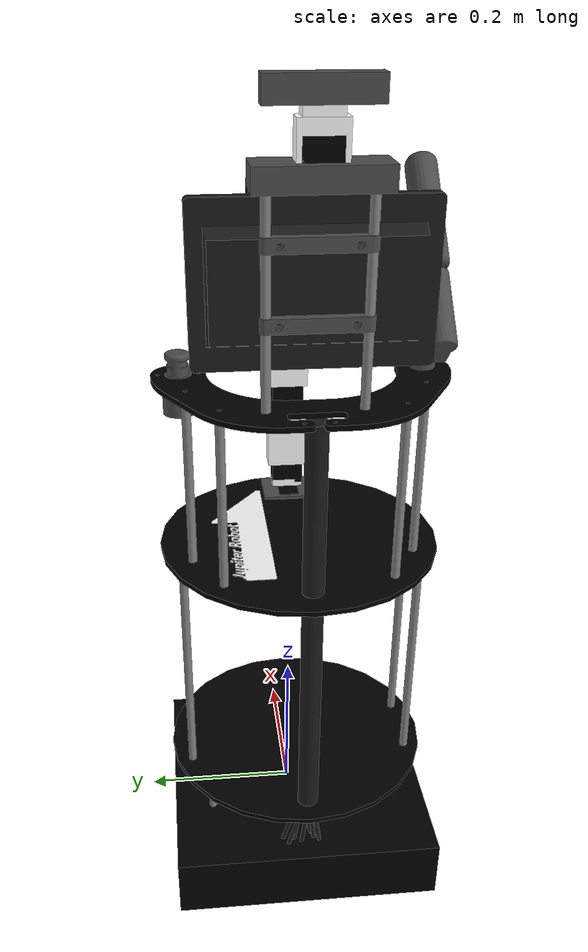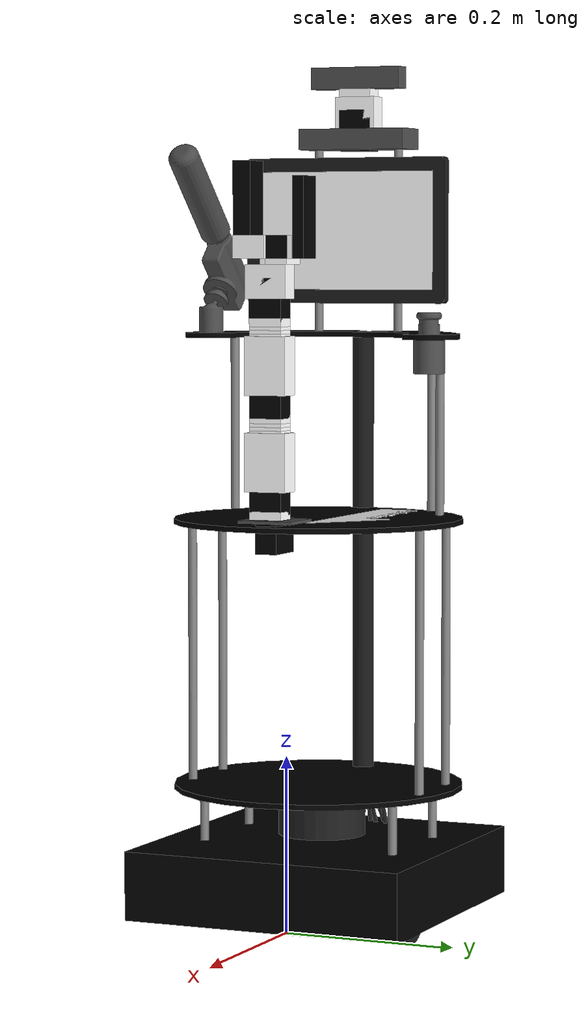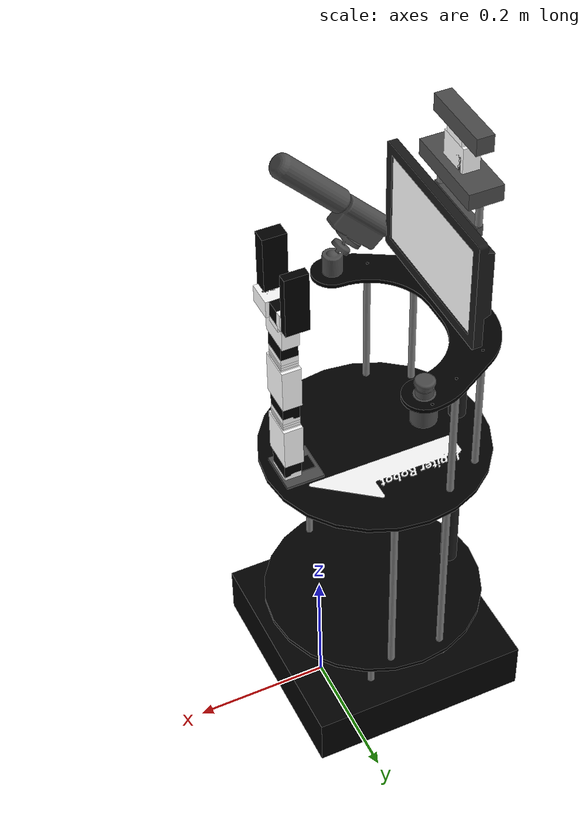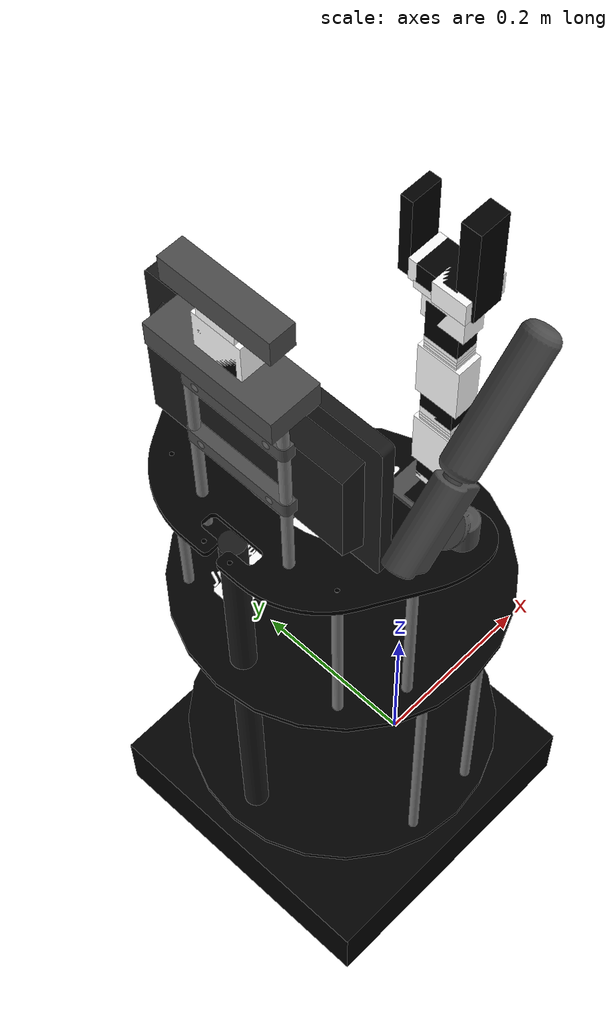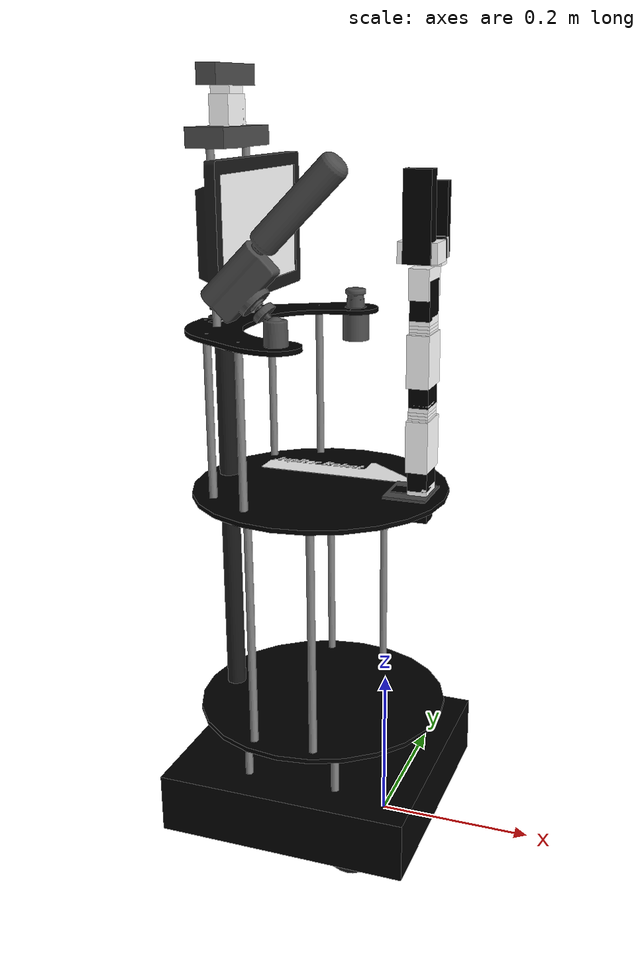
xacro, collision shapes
<?xml version="1.0" ?>
<robot name="jupiter2_pro" xmlns:xacro="http://ros.org/wiki/xacro">
  <xacro:include filename="$(find jupiterobot2_description)/urdf/common_properties.xacro"/>
  <xacro:include filename="$(find jupiterobot2_description)/urdf/jupiter2_gazebo.xacro"/>
  <xacro:include filename="$(find jupiterobot2_head_description)/urdf/jupiterobot2_head.urdf.xacro"/>
  <xacro:include filename="$(find jupiterobot2_arm_description)/urdf/jupiterobot2_arm.urdf.xacro"/>
  <xacro:property name="M_PI" value="3.14159265359"/>

  <link name="base_footprint"/>

  <joint name="base_joint" type="fixed">
    <parent link="base_footprint"/>
    <child link="base_link"/>
    <origin xyz="0 0 0.015" rpy="0 0 0"/>
  </joint>

  <link name="base_link">
    <visual>
      <origin xyz="-0.089 0 0" rpy="0 0 0"/>
      <geometry>
        <mesh filename="package://jupiterobot2_description/meshes/stacks/jupiter2_base.stl" scale="0.001 0.001 0.001"/>
      </geometry>
      <material name="Black"/>
    </visual>
    <collision>
      <origin xyz="-0.089 0 0.039" rpy="0 0 0"/>
      <geometry>
        <box size="0.33 0.33 0.078"/>
      </geometry>
    </collision>
    <inertial>
      <origin xyz="-0.089 0 0.039" rpy="0 0 0"/>
      <mass value="4.6"/>
      <inertia ixx="0.0440772" ixy="0" ixz="0"
               iyy="0.0440772" iyz="0"
               izz="0.08349" />
    </inertial>
  </link>

  <joint name="wheel_left_joint" type="continuous">
    <parent link="base_link"/>
    <child link="wheel_left_link"/>
    <origin xyz="0.0 0.144 0.018" rpy="${-M_PI/2} 0 0"/>
    <axis xyz="0 0 1"/>
  </joint>

  <link name="wheel_left_link">
    <visual>
      <origin xyz="0 0 0" rpy="${M_PI/2} 0 0"/>
      <geometry>
        <mesh filename="package://jupiterobot2_description/meshes/wheels/left_tire.stl" scale="0.001 0.001 0.001"/>
      </geometry>
      <material name="FlatBlack"/>
    </visual>
    <collision>
      <origin xyz="0 0 0" rpy="0 0 0"/>
      <geometry>
        <cylinder length="0.018" radius="0.033"/>
      </geometry>
    </collision>
    <inertial>
      <origin xyz="0 0 0" />
      <mass value="0.03" />
      <inertia ixx="9e-06" ixy="0.0" ixz="0.0"
               iyy="9e-06" iyz="0.0"
               izz="1.64e-05" />
      </inertial>
  </link>

  <joint name="wheel_right_joint" type="continuous">
    <parent link="base_link"/>
    <child link="wheel_right_link"/>
    <origin xyz="0.0 -0.144 0.018" rpy="${-M_PI/2} 0 0"/>
    <axis xyz="0 0 1"/>
  </joint>

  <link name="wheel_right_link">
    <visual>
      <origin xyz="0 0 0" rpy="${M_PI/2} 0 0"/>
      <geometry>
        <mesh filename="package://jupiterobot2_description/meshes/wheels/right_tire.stl" scale="0.001 0.001 0.001"/>
      </geometry>
      <material name="FlatBlack"/>
    </visual>
    <collision>
      <origin xyz="0 0 0" rpy="0 0 0"/>
      <geometry>
        <cylinder length="0.018" radius="0.033"/>
      </geometry>
    </collision>
    <inertial>
      <origin xyz="0 0 0" />
      <mass value="0.03" />
      <inertia ixx="9e-06" ixy="0.0" ixz="0.0"
               iyy="9e-06" iyz="0.0"
               izz="1.64e-05" />
      </inertial>
  </link>

  <joint name="caster_back_right_joint" type="fixed">
    <parent link="base_link"/>
    <child link="caster_back_right_link"/>
    <origin xyz="-0.177 -0.064 -0.0025" rpy="${-M_PI/2} 0 0"/>
  </joint>

  <link name="caster_back_right_link">
    <visual>
      <origin xyz="0 0 0" rpy="0 0 0"/>
      <geometry>
        <mesh filename="package://jupiterobot2_description/meshes/wheels/caster.stl" scale="0.001 0.001 0.001"/>
      </geometry>
      <material name="Grey"/>
    </visual>
    <collision>
      <origin xyz="0 0 0" rpy="0 0 0"/>
      <geometry>
        <sphere radius="0.0125"/>
      </geometry>
    </collision>
    <inertial>
      <origin xyz="0 0 0" />
      <mass value="0.065" />
      <inertia ixx="4.0625e-06" ixy="0.0" ixz="0.0"
               iyy="4.0625e-06" iyz="0.0"
               izz="4.0625e-06" />
    </inertial>
  </link>

  <joint name="caster_back_left_joint" type="fixed">
    <parent link="base_link"/>
    <child link="caster_back_left_link"/>
    <origin xyz="-0.177 0.064 -0.0025" rpy="${-M_PI/2} 0 0"/>
  </joint>

  <link name="caster_back_left_link">
    <visual>
      <origin xyz="0 0 0" rpy="0 0 0"/>
      <geometry>
        <mesh filename="package://jupiterobot2_description/meshes/wheels/caster.stl" scale="0.001 0.001 0.001"/>
      </geometry>
      <material name="Grey"/>
    </visual>
    <collision>
      <origin xyz="0 0 0" rpy="0 0 0"/>
      <geometry>
        <sphere radius="0.0125"/>
      </geometry>
    </collision>
    <inertial>
      <origin xyz="0 0 0" />
      <mass value="0.065" />
      <inertia ixx="4.0625e-06" ixy="0.0" ixz="0.0"
               iyy="4.0625e-06" iyz="0.0"
               izz="4.0625e-06" />
    </inertial>
  </link>

  <joint name="imu_joint" type="fixed">
    <parent link="base_link"/>
    <child link="imu_link"/>
    <origin xyz="-0.091 -0.1055 0.0535" rpy="${M_PI} 0 0"/>
  </joint>

  <link name="imu_link"/>

  <!-- base link for stacks -->
  <joint name="stack_joint" type="fixed">
    <parent link="base_link"/>
    <child link="stack_link"/>
    <origin xyz="-0.089 0 0" rpy="0 0 0"/>
  </joint>

  <link name="stack_link"/>

  <!-- pole macros -->
  <xacro:macro name="pole_40" params="parent num x y z">
    <joint name="pole_40_${num}_joint" type="fixed">
      <parent link="${parent}"/>
      <child link="pole_40_${num}_link"/>
      <origin xyz="${x} ${y} ${z}" rpy="0 0 0"/>
    </joint>
    <link name="pole_40_${num}_link">
      <visual>
        <origin xyz="0 0 0" rpy="0 0 0"/>
        <geometry>
          <mesh filename="package://jupiterobot2_description/meshes/stacks/pole_40.stl" scale="0.001 0.001 0.001"/>
        </geometry>
        <material name="Grey"/>
      </visual>
      <collision>
        <origin xyz="0 0 0" rpy="0 0 0"/>
        <geometry>
          <cylinder length="0.04" radius="0.005"/>
        </geometry>
      </collision>
      <inertial>
        <origin xyz="0 0 0" />
        <mass value="0.007" />
        <inertia ixx="9.91041667e-07" ixy="0.0" ixz="0.0"
                 iyy="9.91041667e-07" iyz="0.0"
                 izz="8.875e-08" />
      </inertial>
    </link>
  </xacro:macro>

  <xacro:macro name="pole_60" params="parent num x y z">
    <joint name="pole_60_${num}_joint" type="fixed">
      <parent link="${parent}"/>
      <child link="pole_60_${num}_link"/>
      <origin xyz="${x} ${y} ${z}" rpy="0 0 0"/>
    </joint>
    <link name="pole_60_${num}_link">
      <visual>
        <origin xyz="0 0 0" rpy="0 0 0"/>
        <geometry>
          <mesh filename="package://jupiterobot2_description/meshes/stacks/pole_60.stl" scale="0.001 0.001 0.001"/>
        </geometry>
        <material name="Grey"/>
      </visual>
      <collision>
        <origin xyz="0 0 0" rpy="0 0 0"/>
        <geometry>
          <cylinder length="0.06" radius="0.005"/>
        </geometry>
      </collision>
      <inertial>
        <origin xyz="0 0 0" />
        <mass value="0.0108" />
        <inertia ixx="3.3075e-06" ixy="0.0" ixz="0.0"
                 iyy="3.3075e-06" iyz="0.0"
                 izz="1.35e-07" />
      </inertial>
    </link>
  </xacro:macro>

  <xacro:macro name="pole_80" params="parent num x y z">
    <joint name="pole_80_${num}_joint" type="fixed">
      <parent link="${parent}"/>
      <child link="pole_80_${num}_link"/>
      <origin xyz="${x} ${y} ${z}" rpy="0 0 0"/>
    </joint>
    <link name="pole_80_${num}_link">
      <visual>
        <origin xyz="0 0 0" rpy="0 0 0"/>
        <geometry>
          <mesh filename="package://jupiterobot2_description/meshes/stacks/pole_80.stl" scale="0.001 0.001 0.001"/>
        </geometry>
        <material name="Grey"/>
      </visual>
      <collision>
        <origin xyz="0 0 0" rpy="0 0 0"/>
        <geometry>
          <cylinder length="0.08" radius="0.005"/>
        </geometry>
      </collision>
      <inertial>
        <origin xyz="0 0 0" />
        <mass value="0.0145" />
        <inertia ixx="7.82395833e-06" ixy="0.0" ixz="0.0"
                 iyy="7.82395833e-06" iyz="0.0"
                 izz="1.8125e-07" />
      </inertial>
    </link>
  </xacro:macro>

  <xacro:macro name="pole_200" params="parent num x y z">
    <joint name="pole_200_${num}_joint" type="fixed">
      <parent link="${parent}"/>
      <child link="pole_200_${num}_link"/>
      <origin xyz="${x} ${y} ${z}" rpy="0 0 0"/>
    </joint>
    <link name="pole_200_${num}_link">
      <visual>
        <origin xyz="0 0 0" rpy="0 0 0"/>
        <geometry>
          <mesh filename="package://jupiterobot2_description/meshes/stacks/pole_200.stl" scale="0.001 0.001 0.001"/>
        </geometry>
        <material name="Grey"/>
      </visual>
      <collision>
        <origin xyz="0 0 0" rpy="0 0 0"/>
        <geometry>
          <cylinder length="0.2" radius="0.005"/>
        </geometry>
      </collision>
      <inertial>
        <origin xyz="0 0 0" />
        <mass value="0.0361" />
        <inertia ixx="0.000120559" ixy="0.0" ixz="0.0"
                 iyy="0.000120559" iyz="0.0"
                 izz="4.5125e-07" />
      </inertial>
    </link>
  </xacro:macro>

  <xacro:macro name="pole_300" params="parent num x y z">
    <joint name="pole_300_${num}_joint" type="fixed">
      <parent link="${parent}"/>
      <child link="pole_300_${num}_link"/>
      <origin xyz="${x} ${y} ${z}" rpy="0 0 0"/>
    </joint>
    <link name="pole_300_${num}_link">
      <visual>
        <origin xyz="0 0 0" rpy="0 0 0"/>
        <geometry>
          <mesh filename="package://jupiterobot2_description/meshes/stacks/pole_300.stl" scale="0.001 0.001 0.001"/>
        </geometry>
        <material name="Grey"/>
      </visual>
      <collision>
        <origin xyz="0 0 0" rpy="0 0 0"/>
        <geometry>
          <cylinder length="0.3" radius="0.005"/>
        </geometry>
      </collision>
      <inertial>
        <origin xyz="0 0 0" />
        <mass value="0.0601" />
        <inertia ixx="0.000451125625" ixy="0.0" ixz="0.0"
                 iyy="0.000451125625" iyz="0.0"
                 izz="7.5125e-07" />
      </inertial>
    </link>
  </xacro:macro>

  <xacro:pole_60 parent="stack_link" num="0" x="0.06" y="0.116" z="0.108"/>
  <xacro:pole_60 parent="stack_link" num="1" x="-0.06" y="0.116" z="0.108"/>
  <xacro:pole_60 parent="stack_link" num="2" x="-0.06" y="-0.116" z="0.108"/>
  <xacro:pole_60 parent="stack_link" num="3" x="0.06" y="-0.116" z="0.108"/>

  <joint name="plate_1_joint" type="fixed">
    <parent link="stack_link"/>
    <child link="plate_1_link"/>
    <origin xyz="0 0 0.138" rpy="0 0 0"/>
  </joint>
  <link name="plate_1_link">
    <visual>
      <origin xyz="0 0 0" rpy="0 0 0"/>
      <geometry>
        <mesh filename="package://jupiterobot2_description/meshes/stacks/plate_1.stl" scale="0.001 0.001 0.001"/>
      </geometry>
      <material name="Black"/>
    </visual>
    <collision>
      <origin xyz="0 0 0.003" rpy="0 0 0"/>
      <geometry>
        <cylinder length="0.006" radius="0.165"/>
      </geometry>
    </collision>
    <inertial>
      <origin xyz="0 0 0.003" />
      <mass value="0.45" />
      <inertia ixx="0.0030641625" ixy="0.0" ixz="0.0"
               iyy="0.0030641625" iyz="0.0"
               izz="0.006125625" />
    </inertial>
  </link>

  <joint name="scan_joint" type="fixed">
    <parent link="plate_1_link"/>
    <child link="base_scan"/>
    <origin xyz="0 0 -0.04615" rpy="0 ${M_PI} 0"/>
  </joint>

  <link name="base_scan">
    <visual>
      <origin xyz="0 0 0" rpy="0 0 0"/>
      <geometry>
        <mesh filename="package://jupiterobot2_description/meshes/sensors/rplidar.dae" scale="1 1 1"/>
      </geometry>
    </visual>
    <collision>
      <origin xyz="0.01 0 -0.016" rpy="0 0 0"/>
      <geometry>
        <cylinder length="0.05" radius="0.05"/>
      </geometry>
    </collision>
    <inertial>
      <origin xyz="0.01 0 -0.016" />
      <mass value="0.188" />
      <inertia ixx="0.0001567" ixy="0.0" ixz="0.0"
               iyy="0.0001567" iyz="0.0"
               izz="0.000235" />
    </inertial>
  </link>

  <joint name="cables_joint" type="fixed">
    <parent link="plate_1_link"/>
    <child link="cables_link"/>
    <origin xyz="-0.13 0 0" rpy="${M_PI/2} 0 ${M_PI/2}"/>
  </joint>
  <link name="cables_link">
    <visual>
      <origin xyz="0 0 0" rpy="0 0 0"/>
      <geometry>
        <mesh filename="package://jupiterobot2_description/meshes/stacks/cables.stl" scale="0.001 0.001 0.001"/>
      </geometry>
      <material name="FlatBlack"/>
    </visual>
    <collision>
      <origin xyz="0 0 0" rpy="0 0 0"/>
      <geometry>
        <mesh filename="package://jupiterobot2_description/meshes/stacks/cables.stl" scale="0.001 0.001 0.001"/>
      </geometry>
    </collision>
  </link>

  <xacro:pole_300 parent="plate_1_link" num="0" x="0.04" y="0.14" z="0.156"/>
  <xacro:pole_300 parent="plate_1_link" num="1" x="-0.04" y="0.14" z="0.156"/>
  <xacro:pole_300 parent="plate_1_link" num="2" x="-0.04" y="-0.14" z="0.156"/>
  <xacro:pole_300 parent="plate_1_link" num="3" x="0.04" y="-0.14" z="0.156"/>

  <joint name="pipe_300_joint" type="fixed">
    <parent link="plate_1_link"/>
    <child link="pipe_300_link"/>
    <origin xyz="-0.13 0 0.156" rpy="0 0 0"/>
  </joint>
  <link name="pipe_300_link">
    <visual>
      <origin xyz="0 0 0" rpy="0 0 0"/>
      <geometry>
        <mesh filename="package://jupiterobot2_description/meshes/stacks/pipe_300.stl" scale="${M_SCALE} ${M_SCALE} ${M_SCALE}"/>
      </geometry>
      <material name="FlatBlack"/>
    </visual>
    <collision>
      <origin xyz="0 0 0" rpy="0 0 0"/>
      <geometry>
        <cylinder length="0.3" radius="0.0125"/>
      </geometry>
    </collision>
    <inertial>
      <origin xyz="0 0 0" />
      <mass value="0.06" />
      <inertia ixx="0.00045234375" ixy="0.0" ixz="0.0"
               iyy="0.00045234375" iyz="0.0"
               izz="4.6875e-06" />
    </inertial>
  </link>

  <joint name="plate_2_joint" type="fixed">
    <parent link="plate_1_link"/>
    <child link="plate_2_link"/>
    <origin xyz="0 0 0.306" rpy="0 0 0"/>
  </joint>
  <link name="plate_2_link">
    <visual>
      <origin xyz="0 0 0" rpy="0 0 0"/>
      <geometry>
        <mesh filename="package://jupiterobot2_description/meshes/stacks/plate_2.stl" scale="0.001 0.001 0.001"/>
      </geometry>
      <material name="Black"/>
    </visual>
    <collision>
      <origin xyz="0 0 0" rpy="0 0 0"/>
      <geometry>
        <cylinder length="0.006" radius="0.165"/>
      </geometry>
    </collision>
    <inertial>
      <origin xyz="0 0 0" />
      <mass value="0.45" />
      <inertia ixx="0.0030641625" ixy="0.0" ixz="0.0"
               iyy="0.0030641625" iyz="0.0"
               izz="0.006125625" />
    </inertial>
  </link>

  <joint name="arrow_joint" type="fixed">
    <parent link="plate_2_link"/>
    <child link="arrow_link"/>
    <origin xyz="0 0.036 0.006" rpy="0 0 0"/>
  </joint>
  <link name="arrow_link">
    <visual>
      <origin xyz="0 0 0" rpy="0 0 0"/>
      <geometry>
        <mesh filename="package://jupiterobot2_description/meshes/stacks/arrow.stl" scale="0.001 0.001 0.001"/>
      </geometry>
      <material name="White"/>
    </visual>
    <collision>
      <origin xyz="0 0 0" rpy="0 0 0"/>
      <geometry>
        <mesh filename="package://jupiterobot2_description/meshes/stacks/arrow.stl" scale="0.001 0.001 0.001"/>
      </geometry>
    </collision>
  </link>

  <!-- arm_mount -->
  <joint name="arm_mount_joint" type="fixed">
    <parent link="plate_2_link"/>
    <child link="arm_mount_link"/>
    <origin xyz="0.134 0 0.006" rpy="0 0 0"/>
  </joint>

  <link name="arm_mount_link">
    <visual>
      <origin xyz="0 0 0" rpy="0 0 0"/>
      <geometry>
        <mesh filename="package://jupiterobot2_description/meshes/stacks/arm_mount.stl" scale="0.001 0.001 0.001"/>
      </geometry>
      <material name="DarkGrey"/>
    </visual>
    <collision>
      <origin xyz="-0.013 0 0.0015" rpy="0 0 0"/>
      <geometry>
        <box size="0.056 0.064 0.003"/>
      </geometry>
    </collision>
    <inertial>
      <origin xyz="-0.013 0 0.0015" rpy="0 0 0"/>
      <mass value="0.0071"/>
      <inertia ixx="2.42879167e-06" ixy="0" ixz="0"
               iyy="1.86079167e-06" iyz="0"
               izz="4.278933e-06" />
    </inertial>
  </link>

  <xacro:pole_200 parent="plate_2_link" num="0" x="-0.05" y="0.12817" z="0.106"/>
  <xacro:pole_200 parent="plate_2_link" num="1" x="-0.10629" y="0.09567" z="0.106"/>
  <xacro:pole_200 parent="plate_2_link" num="2" x="-0.10629" y="-0.09567" z="0.106"/>
  <xacro:pole_200 parent="plate_2_link" num="3" x="-0.05" y="-0.12817" z="0.106"/>

  <joint name="pipe_200_joint" type="fixed">
    <parent link="plate_2_link"/>
    <child link="pipe_200_link"/>
    <origin xyz="-0.13 0 0.106" rpy="0 0 0"/>
  </joint>
  <link name="pipe_200_link">
    <visual>
      <origin xyz="0 0 0" rpy="0 0 0"/>
      <geometry>
        <mesh filename="package://jupiterobot2_description/meshes/stacks/pipe_200.stl" scale="${M_SCALE} ${M_SCALE} ${M_SCALE}"/>
      </geometry>
      <material name="FlatBlack"/>
    </visual>
    <collision>
      <origin xyz="0 0 0" rpy="0 0 0"/>
      <geometry>
        <cylinder length="0.2" radius="0.0125"/>
      </geometry>
    </collision>
    <inertial>
      <origin xyz="0 0 0" />
      <mass value="0.04" />
      <inertia ixx="0.000134896" ixy="0.0" ixz="0.0"
               iyy="0.000134896" iyz="0.0"
               izz="3.125e-06" />
    </inertial>
  </link>

  <joint name="plate_3_joint" type="fixed">
    <parent link="plate_2_link"/>
    <child link="plate_3_link"/>
    <origin xyz="0 0 0.206" rpy="0 0 0"/>
  </joint>
  <link name="plate_3_link">
    <visual>
      <origin xyz="0 0 0" rpy="0 0 0"/>
      <geometry>
        <mesh filename="package://jupiterobot2_description/meshes/stacks/plate_3.stl" scale="0.001 0.001 0.001"/>
      </geometry>
      <material name="Black"/>
    </visual>
    <collision>
      <origin xyz="0 0 0" rpy="0 0 0"/>
      <geometry>
        <mesh filename="package://jupiterobot2_description/meshes/stacks/plate_3.stl" scale="0.001 0.001 0.001"/>
      </geometry>
    </collision>
    <inertial>
      <origin xyz="-0.08 0 0.003"/>
      <mass value="0.152" />
      <inertia ixx="0.000923856" ixy="0.0" ixz="0.0"
               iyy="0.0003247227" iyz="0.0"
               izz="0.001247667" />
    </inertial>
  </link>

  <joint name="mic_joint" type="fixed">
    <parent link="plate_3_link"/>
    <child link="mic_link"/>
    <origin xyz="0 -0.13466 0.006" rpy="0 0 0"/>
  </joint>
  <link name="mic_link">
    <visual>
      <origin xyz="0 0 0" rpy="0 0 0"/>
      <geometry>
        <mesh filename="package://jupiterobot2_description/meshes/stacks/microphone.stl" scale="0.001 0.001 0.001"/>
      </geometry>
      <material name="DarkGrey"/>
    </visual>
    <collision>
      <origin xyz="0 0 0" rpy="0 0 0"/>
      <geometry>
        <mesh filename="package://jupiterobot2_description/meshes/stacks/microphone.stl" scale="0.001 0.001 0.001"/>
      </geometry>
    </collision>
    <inertial>
      <origin xyz="-0.02 0 0.03"/>
      <mass value="0.21" />
      <inertia ixx="7.875e-05" ixy="0.0" ixz="0.0"
               iyy="9.1e-05" iyz="0.0"
               izz="4.375e-05" />
    </inertial>
  </link>

  <joint name="estop_joint" type="fixed">
    <parent link="plate_3_link"/>
    <child link="estop_link"/>
    <origin xyz="0 0.13466 -0.0381" rpy="0 0 0"/>
  </joint>
  <link name="estop_link">
    <visual>
      <origin xyz="0 0 0" rpy="0 0 0"/>
      <geometry>
        <mesh filename="package://jupiterobot2_description/meshes/stacks/e_stop.stl" scale="0.001 0.001 0.001"/>
      </geometry>
      <material name="DarkGrey"/>
    </visual>
    <collision>
      <origin xyz="0 0 0" rpy="0 0 0"/>
      <geometry>
        <mesh filename="package://jupiterobot2_description/meshes/stacks/e_stop.stl" scale="0.001 0.001 0.001"/>
      </geometry>
    </collision>
    <inertial>
      <origin xyz="0 0 0.038" />
      <mass value="0.0763" />
      <inertia ixx="3.60151896e-05" ixy="0.0" ixz="0.0"
               iyy="3.60151896e-05" iyz="0.0"
               izz="1.23606e-05" />
    </inertial>
  </link>

  <xacro:pole_80 parent="plate_3_link" num="0" x="-0.115" y="0.05" z="0.046"/>
  <xacro:pole_80 parent="plate_3_link" num="1" x="-0.115" y="-0.05" z="0.046"/>

  <joint name="monitor_frame_1_joint" type="fixed">
    <parent link="plate_3_link"/>
    <child link="monitor_frame_1_link"/>
    <origin xyz="-0.115 0 0.0935" rpy="0 0 0"/>
  </joint>
  <link name="monitor_frame_1_link">
    <visual>
      <origin xyz="0 0 0" rpy="0 0 0"/>
      <geometry>
        <mesh filename="package://jupiterobot2_description/meshes/stacks/monitor_frame.stl" scale="0.001 0.001 0.001"/>
      </geometry>
      <material name="DarkGrey"/>
    </visual>
    <collision>
      <origin xyz="0 0 0" rpy="0 0 0"/>
      <geometry>
        <mesh filename="package://jupiterobot2_description/meshes/stacks/monitor_frame.stl" scale="0.001 0.001 0.001"/>
      </geometry>
    </collision>
    <inertial>
      <origin xyz="0 0 0" />
      <mass value="0.0136" />
      <inertia ixx="1.4471533e-05" ixy="0.0" ixz="0.0"
               iyy="4.182e-07" iyz="0.0"
               izz="1.4379733e-05" />
    </inertial>
  </link>

  <xacro:pole_60 parent="pole_80_0_link" num="4" x="0" y="0" z="0.085"/>
  <xacro:pole_60 parent="pole_80_1_link" num="5" x="0" y="0" z="0.085"/>

  <joint name="monitor_frame_2_joint" type="fixed">
    <parent link="monitor_frame_1_link"/>
    <child link="monitor_frame_2_link"/>
    <origin xyz="0 0 0.075" rpy="0 0 0"/>
  </joint>
  <link name="monitor_frame_2_link">
    <visual>
      <origin xyz="0 0 0" rpy="0 0 0"/>
      <geometry>
        <mesh filename="package://jupiterobot2_description/meshes/stacks/monitor_frame.stl" scale="0.001 0.001 0.001"/>
      </geometry>
      <material name="DarkGrey"/>
    </visual>
    <collision>
      <origin xyz="0 0 0" rpy="0 0 0"/>
      <geometry>
        <mesh filename="package://jupiterobot2_description/meshes/stacks/monitor_frame.stl" scale="0.001 0.001 0.001"/>
      </geometry>
    </collision>
    <inertial>
      <origin xyz="0 0 0" />
      <mass value="0.0136" />
      <inertia ixx="1.4471533e-05" ixy="0.0" ixz="0.0"
               iyy="4.182e-07" iyz="0.0"
               izz="1.4379733e-05" />
    </inertial>
  </link>

  <xacro:pole_40 parent="pole_60_4_link" num="0" x="0" y="0" z="0.065"/>
  <xacro:pole_40 parent="pole_60_5_link" num="1" x="0" y="0" z="0.065"/>

  <!-- head_mount -->
  <joint name="head_mount_joint" type="fixed">
    <parent link="monitor_frame_2_link"/>
    <child link="head_mount_link"/>
    <origin xyz="0 0 0.0475" rpy="0 0 0"/>
  </joint>

  <link name="head_mount_link">
    <visual>
      <origin xyz="0 0 0" rpy="0 0 0"/>
      <geometry>
        <mesh filename="package://jupiterobot2_description/meshes/stacks/head_mount.stl" scale="0.001 0.001 0.001"/>
      </geometry>
      <material name="DarkGrey"/>
    </visual>
    <collision>
      <origin xyz="0 0 0.012" rpy="0 0 0"/>
      <geometry>
        <box size="0.05 0.13 0.024"/>
      </geometry>
    </collision>
    <inertial>
      <origin xyz="0 0 0.005" rpy="0 0 0"/>
      <mass value="0.0205"/>
      <inertia ixx="2.4770833e-05" ixy="0" ixz="0"
               iyy="2.9041667e-06" iyz="0"
               izz="2.7333e-05" />
    </inertial>
  </link>

  <joint name="monitor_joint" type="fixed">
    <parent link="monitor_frame_2_link"/>
    <child link="monitor_link"/>
    <origin xyz="0.0405 0 -0.046" rpy="0 0 0"/>
  </joint>
  <link name="monitor_link">
    <visual>
      <origin xyz="0 0 0" rpy="0 0 0"/>
      <geometry>
        <mesh filename="package://jupiterobot2_description/meshes/stacks/monitor.stl" scale="0.001 0.001 0.001"/>
      </geometry>
      <material name="FlatBlack"/>
    </visual>
    <collision>
      <origin xyz="0 0 0" rpy="0 0 0"/>
      <geometry>
        <mesh filename="package://jupiterobot2_description/meshes/stacks/monitor.stl" scale="0.001 0.001 0.001"/>
      </geometry>
    </collision>
    <inertial>
      <origin xyz="-0.013 0 0.005"/>
      <mass value="0.48" />
      <inertia ixx="0.00354605" ixy="0.0" ixz="0.0"
               iyy="0.0011426" iyz="0.0"
               izz="0.00245753" />
    </inertial>
  </link>

  <joint name="screen_joint" type="fixed">
    <parent link="monitor_link"/>
    <child link="screen_link"/>
    <origin xyz="-0.0025 0 0" rpy="0 0 0"/>
  </joint>
  <link name="screen_link">
    <visual>
      <origin xyz="0 0 0" rpy="0 0 0"/>
      <geometry>
        <mesh filename="package://jupiterobot2_description/meshes/stacks/screen.stl" scale="0.001 0.001 0.001"/>
      </geometry>
      <material name="White"/>
    </visual>
    <collision>
      <origin xyz="0 0 0" rpy="0 0 0"/>
      <geometry>
        <mesh filename="package://jupiterobot2_description/meshes/stacks/screen.stl" scale="0.001 0.001 0.001"/>
      </geometry>
    </collision>
  </link>

</robot>

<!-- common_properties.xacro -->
<robot name="xacro_properties" xmlns:xacro="http://ros.org/wiki/xacro">

  <!-- Init colour -->
  <material name="Black">
    <color rgba="0.0 0.0 0.0 1.0"/>
  </material>

  <material name="FlatBlack">
    <color rgba="0.1 0.1 0.1 1.0"/>
  </material>

  <material name="DarkGrey">
    <color rgba="0.3 0.3 0.3 1.0"/>
  </material>

  <material name="Grey">
    <color rgba="0.5 0.5 0.5 1.0"/>
  </material>

  <material name="Red">
    <color rgba="0.8 0.0 0.0 1.0"/>
  </material>

  <material name="Green">
    <color rgba="0.0 0.8 0.0 1.0"/>
  </material>

  <material name="Blue">
    <color rgba="0.0 0.0 0.8 1.0"/>
  </material>

  <material name="White">
    <color rgba="1.0 1.0 1.0 1.0"/>
  </material>

</robot>

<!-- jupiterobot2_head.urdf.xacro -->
<!-- Describe URDF for Jupiter2 Head -->
<robot name="jupiterobot2_head" xmlns:xacro="http://ros.org/wiki/xacro">

    <!-- We can configure joints velocity limit and lower/upper limits
         to allow access to different operational areas, e.g. left handed vs. right handed robot -->
    <xacro:property name="joints_vlimit" value="1.571"/>
    <xacro:property name="joint_6_llimit" value="-1.5"/>
    <xacro:property name="joint_6_ulimit" value="1.5"/>

    <!-- Included URDF Files -->
    <xacro:include filename="$(find jupiterobot2_head_description)/urdf/jupiterobot2_head.xacro"/>

    <!-- Jupiter2 head macro -->
    <xacro:jupiterobot2_head parent="head_mount_link" color="White">
        <origin xyz="0.0 0.0 0.076"/>
    </xacro:jupiterobot2_head>

</robot>

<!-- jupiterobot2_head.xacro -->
<!-- Head description for Jupiter2 Head -->
<robot xmlns:xacro="http://ros.org/wiki/xacro">
  <xacro:include filename="$(find jupiterobot2_head_description)/urdf/head_hardware.xacro"/>
  <xacro:include filename="$(find jupiterobot2_head_description)/urdf/camera_top.urdf.xacro"/>

  <xacro:macro name="jupiterobot2_head" params="parent color *origin">
    <joint name="head_base_joint" type="fixed">
      <xacro:insert_block name="origin"/>
      <parent link="${parent}"/>
      <child link="head_base_link"/>
    </joint>
    <link name="head_base_link"/>

    <xacro:dynamixel_AX12_fixed parent="head_base_link" name="head_servo">
      <origin xyz="0 0 ${-AX12_HEIGHT-0.004+0.001}" rpy="0 0 0"/>
    </xacro:dynamixel_AX12_fixed>
    <xacro:bioloid_F2_revolute parent="head_servo_link" name="head" color="${color}"
                vlimit="${joints_vlimit}" llimit="${joint_6_llimit}" ulimit="${joint_6_ulimit}">
      <origin xyz="0 0 0" rpy="0 0 0"/>
    </xacro:bioloid_F2_revolute>
    <xacro:bioloid_F3_fixed parent="head_link" name="head_plate" color="${color}">
      <origin xyz="0 0 ${F2_HEIGHT}" rpy="0 ${M_PI} 0"/>
    </xacro:bioloid_F3_fixed>

    <!-- camera_top -->
    <xacro:sensor_camera_top parent="head_plate_link"/>

    <!-- Load -->
    <xacro:include filename="$(find jupiterobot2_head_description)/urdf/jupiterobot2_head_gazebo.xacro"/>

  </xacro:macro>
</robot>

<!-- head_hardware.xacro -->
<!-- Basic URDF components for Jupiter2 Head-->
<robot xmlns:xacro="http://ros.org/wiki/xacro">
  <xacro:property name="M_PI" value="3.14159265359"/>
  <xacro:property name="M_SCALE" value="0.001"/>
  <xacro:property name="AX12_HEIGHT" value="0.0385"/>
  <xacro:property name="AX12_WIDTH" value="0.038"/>
  <xacro:property name="AX12_LENGTH" value="0.050"/>
  <xacro:property name="F2_HEIGHT" value="0.0265"/>
  <xacro:property name="F3_HEIGHT" value="0.009"/>

  <xacro:macro name="dynamixel_AX12_fixed" params="parent name *origin">
    <joint name="${name}_joint" type="fixed">
      <xacro:insert_block name="origin"/>
      <parent link="${parent}"/>
      <child link="${name}_link"/>
    </joint>
    <link name="${name}_link">
      <visual>
        <origin xyz="0 0 0" rpy="0 0 0"/>
        <geometry>
          <mesh filename="package://jupiterobot2_head_description/meshes/ax12_box.stl" scale="${M_SCALE} ${M_SCALE} ${M_SCALE}"/>
        </geometry>
        <material name="Black"/>
      </visual>
      <collision>
        <origin xyz="0.0 0.0 -0.01241" rpy="0 0 0"/>
        <geometry>
          <box size="0.025 0.038 0.04762"/>
        </geometry>
      </collision>
      <inertial>
        <origin xyz="0 0 0"/>
        <mass value="0.055"/>
        <inertia ixx="0.000017012" ixy="0.0" ixz="0.0"
                 iyy="0.000013258" iyz="0.0"
                 izz="0.000009483"/>
      </inertial>
    </link>
    <gazebo reference="${name}_link">
      <material>Gazebo/Black</material>
      <selfCollide>true</selfCollide>
      <gravity>true</gravity>
    </gazebo>
  </xacro:macro>

  <xacro:macro name="bioloid_F2_revolute" params="parent name color llimit ulimit vlimit *origin">
    <joint name="${name}_joint" type="revolute">
      <xacro:insert_block name="origin"/>
      <axis xyz="0 1 0"/>
      <limit effort="30" velocity="${vlimit}" lower="${llimit}" upper="${ulimit}"/>
      <dynamics friction="0.13"/>
      <parent link="${parent}"/>
      <child link="${name}_link"/>
    </joint>

    <link name="${name}_link">
      <visual>
        <origin xyz="0 0 0" rpy="0 0 0"/>
        <geometry>
          <mesh filename="package://jupiterobot2_head_description/meshes/F2.stl" scale="${M_SCALE} ${M_SCALE} ${M_SCALE}"/>
        </geometry>
        <material name="${color}"/>
      </visual>
      <collision>
        <origin xyz="0.0 0.0 0.00775" rpy="0 0 0"/>
        <geometry>
          <box size="0.025 0.0485 0.0375"/>
        </geometry>
      </collision>
      <inertial>
        <origin xyz="0 0 0.015"/>
        <mass value="0.0115"/>
        <inertia ixx="3.55565625e-06" ixy="0.0" ixz="0.0"
                 iyy="1.946614583e-06" iyz="0.0"
                 izz="2.80695833e-06"/>
      </inertial>
    </link>

    <gazebo reference="${name}_link">
      <material>Gazebo/${color}</material>
      <selfCollide>true</selfCollide>
      <gravity>true</gravity>
    </gazebo>
  </xacro:macro>

  <xacro:macro name="bioloid_F3_fixed" params="parent name color *origin">
    <joint name="${name}_joint" type="fixed">
      <xacro:insert_block name="origin"/>
      <parent link="${parent}"/>
      <child link="${name}_link"/>
    </joint>

    <link name="${name}_link">
      <visual>
        <origin xyz="0 0 0" rpy="0 0 0"/>
        <geometry>
          <mesh filename="package://jupiterobot2_head_description/meshes/F3.stl" scale="${M_SCALE} ${M_SCALE} ${M_SCALE}"/>
        </geometry>
        <material name="${color}"/>
      </visual>
      <collision>
        <origin xyz="0.0 0.0 -0.0045" rpy="0 0 0"/>
        <geometry>
          <box size="0.025 0.038 0.009"/>
        </geometry>
      </collision>
      <inertial>
        <origin xyz="0 0 -0.004"/>
        <mass value="0.005"/>
        <inertia ixx="6.2833e-07" ixy="0.0" ixz="0.0"
                 iyy="2.870833e-07" iyz="0.0"
                 izz="8.620833e-07"/>
      </inertial>
    </link>

    <gazebo reference="${name}_link">
      <material>Gazebo/${color}</material>
      <selfCollide>true</selfCollide>
      <gravity>true</gravity>
    </gazebo>
  </xacro:macro>

</robot>

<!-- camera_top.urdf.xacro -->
<robot name="sensor_camera_top" xmlns:xacro="http://ros.org/wiki/xacro">
    <!-- Xacro properties -->
    <xacro:property name="cam_px" value="0.000"/>
    <xacro:property name="cam_py" value="-0.009"/>
    <xacro:property name="cam_pz" value="0.000"/>
    <xacro:property name="cam_depth_offset" value="0.001"/>
    <!-- camera_top properties -->
    <xacro:macro name="sensor_camera_top" params="parent">
        <joint name="camera_joint" type="fixed">
            <origin xyz="-0.0125 0 -0.0215" rpy="0 ${M_PI} 0"/>
            <parent link="${parent}"/>
            <child link="camera_link"/>
        </joint>
        <link name="camera_link">
            <visual>
                <origin xyz="0 0 0" rpy="0 0 0"/>
                <geometry>
                    <mesh filename="package://jupiterobot2_head_description/meshes/camera.stl" scale="0.001 0.001 0.001"/>
                </geometry>
                <material name="DarkGrey"/>
            </visual>
            <collision>
                <origin xyz="-0.0125 0 0" rpy="0 0 0"/>
                <geometry>
                    <box size="0.025 0.109 0.025"/>
                </geometry>
            </collision>
            <inertial>
                <origin xyz="-0.0125 0 0" rpy="0 0 0" />
                <mass value="0.06" />
                <inertia ixx="6.253e-05" ixy="0.0" ixz="0.0"
                         iyy="6.25e-06" iyz="0.0"
                         izz="6.253e-05" />
            </inertial>
        </link>
        <gazebo reference="camera_link">
            <material>Gazebo/DarkGrey</material>
            <selfCollide>true</selfCollide>
            <gravity>true</gravity>
        </gazebo>

        <joint name="camera_color_joint" type="fixed">
            <origin xyz="${cam_px} ${cam_py} ${cam_pz}" rpy="0 0 0"/>
            <parent link="camera_link"/>
            <child link="camera_color_frame"/>
        </joint>
        <link name="camera_color_frame"/>

        <joint name="camera_color_optical_joint" type="fixed">
            <origin xyz="0 0 0" rpy="${-M_PI/2} 0 ${-M_PI/2}"/>
            <parent link="camera_color_frame"/>
            <child link="camera_color_optical_frame"/>
        </joint>
        <link name="camera_color_optical_frame"/>

        <joint name="camera_depth_joint" type="fixed">
            <origin xyz="${cam_px} ${cam_py + cam_depth_offset} ${cam_pz}" rpy="0 0 0"/>
            <parent link="camera_link"/>
            <child link="camera_depth_frame"/>
        </joint>
        <link name="camera_depth_frame"/>

        <joint name="camera_depth_optical_joint" type="fixed">
            <origin xyz="0 0 0" rpy="${-M_PI/2} 0 ${-M_PI/2}"/>
            <parent link="camera_depth_frame"/>
            <child link="camera_depth_optical_frame"/>
        </joint>
        <link name="camera_depth_optical_frame"/>
    </xacro:macro>

</robot>

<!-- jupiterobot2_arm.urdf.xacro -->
<!-- Describe URDF for Jupiter2 Arm -->
<robot name="jupiterobot2_arm" xmlns:xacro="http://ros.org/wiki/xacro">

    <!-- We can configure joints velocity limit and lower/upper limits
         to allow access to different operational areas, e.g. left handed vs. right handed robot -->
    <xacro:property name="joints_vlimit" value="1.571"/>
    <xacro:property name="arm1_llimit" value="-2.617"/>
    <xacro:property name="arm1_ulimit" value="2.617"/>
    <xacro:property name="arm2_llimit" value="-2.617"/>
    <xacro:property name="arm2_ulimit" value="2.617"/>
    <xacro:property name="arm3_llimit" value="-2.617"/>
    <xacro:property name="arm3_ulimit" value="2.617"/>
    <xacro:property name="arm4_llimit" value="-1.745"/>
    <xacro:property name="arm4_ulimit" value="1.745"/>

    <!-- Included URDF Files -->
    <xacro:include filename="$(find jupiterobot2_arm_description)/urdf/jupiterobot2_arm.xacro"/>

    <!-- As we don't have here a robot base, add a base_link link as its location reference -->
    <!--link name="arm_mount_link"/-->

    <!-- Jupiter2 arm macro -->
    <xacro:jupiterobot2_arm parent="arm_mount_link" color="White" gripper_color="Black">
      <!-- Place the "floating" arm at the location it should be -->
      <origin xyz="0.0 0.0 -0.015"/>
    </xacro:jupiterobot2_arm>
</robot>

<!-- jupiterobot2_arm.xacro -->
<!-- Arm description for Jupiter2 Arm -->
<robot xmlns:xacro="http://ros.org/wiki/xacro">
  <xacro:include filename="$(find jupiterobot2_arm_description)/urdf/arm_hardware.xacro"/>

  <xacro:macro name="jupiterobot2_arm" params="parent color gripper_color *origin">
    <link name="arm_base_link"/>
    <joint name="arm_base_joint" type="fixed">
      <xacro:insert_block name="origin"/>
      <parent link="${parent}"/>
      <child link="arm_base_link"/>
    </joint>

    <!-- arm servo ID1 joint -->
    <xacro:dynamixel_AX12_fixed parent="arm_base_link" name="arm1_servo">
      <origin xyz="0 0 0" rpy="${M_PI/2} 0 ${M_PI/2}"/>
    </xacro:dynamixel_AX12_fixed>
    <xacro:bioloid_F3_revolute parent="arm1_servo_link" name="arm1" color="${color}"
                               vlimit="${joints_vlimit}" llimit="${arm1_llimit}" ulimit="${arm1_ulimit}">
      <origin xyz="0 ${AX12_WIDTH/2} 0" rpy="${-M_PI/2} ${M_PI/2} ${M_PI}"/>
    </xacro:bioloid_F3_revolute>

    <!-- arm servo ID2 joint -->
    <xacro:dynamixel_AX12_fixed parent="arm1_link" name="arm2_servo">
      <origin xyz="0 0 ${-AX12_HEIGHT-F10_HEIGHT+0.001}" rpy="0 ${M_PI} 0"/>
    </xacro:dynamixel_AX12_fixed>
    <xacro:bioloid_F4_revolute parent="arm2_servo_link" name="arm2" color="${color}"
                               vlimit="${joints_vlimit}" llimit="${arm2_llimit}" ulimit="${arm2_ulimit}">
      <origin xyz="0 0 0" rpy="0 0 0"/>
    </xacro:bioloid_F4_revolute>
    <xacro:bioloid_F10_fixed parent="arm2_link" name="arm2_F10_1" color="${color}">
      <origin xyz="0 0 ${F4_HEIGHT+F10_HEIGHT/2}" rpy="0 0 0"/>
    </xacro:bioloid_F10_fixed>
    <xacro:bioloid_F10_fixed parent="arm2_F10_1_link" name="arm2_F10_2" color="${color}">
      <origin xyz="0 0 ${F10_HEIGHT}" rpy="0 0 0"/>
    </xacro:bioloid_F10_fixed>
    <xacro:bioloid_F10_fixed parent="arm2_F10_2_link" name="arm2_F10_3" color="${color}">
      <origin xyz="0 0 ${F10_HEIGHT}" rpy="0 0 0"/>
    </xacro:bioloid_F10_fixed>
    <xacro:bioloid_F3_fixed parent="arm2_F10_3_link" name="arm2_F3" color="${color}">
      <origin xyz="0 0 ${F10_HEIGHT/2}" rpy="0 ${M_PI} 0"/>
    </xacro:bioloid_F3_fixed>

    <!-- arm servo ID3 joint -->
    <xacro:dynamixel_AX12_fixed parent="arm2_F3_link" name="arm3_servo">
      <origin xyz="0 0 ${-AX12_HEIGHT-F10_HEIGHT+0.001}" rpy="0 ${M_PI} 0"/>
    </xacro:dynamixel_AX12_fixed>
    <xacro:bioloid_F4_revolute parent="arm3_servo_link" name="arm3" color="${color}"
                               vlimit="${joints_vlimit}" llimit="${arm3_llimit}" ulimit="${arm3_ulimit}">
      <origin xyz="0 0 0" rpy="0 0 0"/>
    </xacro:bioloid_F4_revolute>
    <xacro:bioloid_F10_fixed parent="arm3_link" name="arm3_F10_1" color="${color}">
      <origin xyz="0 0 ${F4_HEIGHT+F10_HEIGHT/2}" rpy="0 0 0"/>
    </xacro:bioloid_F10_fixed>
    <xacro:bioloid_F10_fixed parent="arm3_F10_1_link" name="arm3_F10_2" color="${color}">
      <origin xyz="0 0 ${F10_HEIGHT}" rpy="0 0 0"/>
    </xacro:bioloid_F10_fixed>
    <xacro:bioloid_F10_fixed parent="arm3_F10_2_link" name="arm3_F10_3" color="${color}">
      <origin xyz="0 0 ${F10_HEIGHT}" rpy="0 0 0"/>
    </xacro:bioloid_F10_fixed>
    <xacro:bioloid_F3_fixed parent="arm3_F10_3_link" name="arm3_F3" color="${color}">
      <origin xyz="0 0 ${F10_HEIGHT/2}" rpy="0 ${M_PI} 0"/>
    </xacro:bioloid_F3_fixed>

    <!-- arm servo ID4 joint -->
    <xacro:dynamixel_AX12_fixed parent="arm3_F3_link" name="arm4_servo">
      <origin xyz="0 0 ${-AX12_HEIGHT-F10_HEIGHT+0.001}" rpy="0 ${M_PI} 0"/>
    </xacro:dynamixel_AX12_fixed>
    <xacro:bioloid_F2_revolute parent="arm4_servo_link" name="arm4" color="${color}"
                               vlimit="${joints_vlimit}" llimit="${arm4_llimit}" ulimit="${arm4_ulimit}">
      <origin xyz="0 0 0" rpy="0 0 0"/>
    </xacro:bioloid_F2_revolute>

    <!-- fake gripper_link joint gives us a free servo!
         this makes us 5DOF and saves you $44.90
         that's a lot of coin! -->
    <link name="gripper_link"/>
    <joint name="gripper_link_joint" type="revolute">
      <origin xyz="0 0 0.112" rpy="0 -1.57 0"/>
      <parent link="arm4_link"/>
      <child link="gripper_link"/>
      <limit effort="30" velocity="1" lower="-3.14" upper="3.14"/>
      <axis xyz="1 0 0"/>
    </joint>

    <!-- gripper - Load Jupiter2 gripper -->
    <xacro:include filename="$(find jupiterobot2_arm_description)/urdf/jupiterobot2_gripper.xacro"/>

    <!-- Load -->
    <xacro:include filename="$(find jupiterobot2_arm_description)/urdf/jupiterobot2_arm_gazebo.xacro"/>

  </xacro:macro>

</robot>

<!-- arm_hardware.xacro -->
<!-- Basic URDF components for Jupiter2 Arm -->
<robot xmlns:xacro="http://ros.org/wiki/xacro">
  <xacro:property name="M_PI" value="3.14159265359"/>
  <xacro:property name="M_SCALE" value="0.001"/>
  <xacro:property name="F10_HEIGHT" value="0.004"/>
  <xacro:property name="F4_HEIGHT" value="0.0525"/>
  <xacro:property name="F3_HEIGHT" value="0.009"/>
  <xacro:property name="F2_HEIGHT" value="0.0265"/>
  <xacro:property name="AX12_HEIGHT" value="0.0385"/>
  <xacro:property name="AX12_WIDTH" value="0.038"/>
  <xacro:property name="AX12_LENGTH" value="0.050"/>

  <xacro:macro name="finger_active" params="parent name color *origin">
    <joint name="${name}_joint" type="fixed">
      <xacro:insert_block name="origin"/>
      <parent link="${parent}"/>
      <child link="${name}_link"/>
    </joint>

    <link name="${name}_link">
      <visual>
        <origin xyz="0 0 0" rpy="0 0 0"/>
        <geometry>
          <mesh filename="package://jupiterobot2_arm_description/meshes/finger_active.stl" scale="${M_SCALE} ${M_SCALE} ${M_SCALE}"/>
        </geometry>
        <material name="${color}"/>
      </visual>
      <collision>
        <origin xyz="0.0535 0.017 0.0105" rpy="0 0 0"/>
        <geometry>
          <box size="0.107 0.034 0.021"/>
        </geometry>
      </collision>
      <inertial>
        <origin xyz="0.0535 0.017 0.0105" rpy="0 0 0"/>
        <mass value="0.009"/>
        <inertia ixx="1.19775e-06" ixy="0" ixz="0"
                 iyy="8.9175e-06" iyz="0"
                 izz="9.45375e-06" />
      </inertial>
    </link>

    <gazebo reference="${name}_link">
      <material>Gazebo/${color}</material>
      <selfCollide>true</selfCollide>
      <gravity>true</gravity>
    </gazebo>
  </xacro:macro>

  <xacro:macro name="finger_fixed" params="parent name color *origin">
    <joint name="${name}_joint" type="fixed">
      <xacro:insert_block name="origin"/>
      <parent link="${parent}"/>
      <child link="${name}_link"/>
    </joint>

    <link name="${name}_link">
      <visual>
        <origin xyz="0 0 0" rpy="0 0 0"/>
        <geometry>
          <mesh filename="package://jupiterobot2_arm_description/meshes/finger_static.stl" scale="${M_SCALE} ${M_SCALE} ${M_SCALE}"/>
        </geometry>
        <material name="${color}"/>
      </visual>
      <collision>
        <origin xyz="0.045 0.017 0.0065" rpy="0 0 0"/>
        <geometry>
          <box size="0.09 0.034 0.013"/>
        </geometry>
      </collision>
      <inertial>
        <origin xyz="0.045 0.017 0.0065" rpy="0 0 0"/>
        <mass value="0.0075"/>
        <inertia ixx="8.28125e-07" ixy="0" ixz="0"
                 iyy="5.168125e-06" iyz="0"
                 izz="5.785e-06" />
      </inertial>
    </link>

    <gazebo reference="${name}_link">
      <material>Gazebo/${color}</material>
      <selfCollide>true</selfCollide>
      <gravity>true</gravity>
    </gazebo>
  </xacro:macro>

  <xacro:macro name="dynamixel_AX12_fixed" params="parent name *origin">
    <joint name="${name}_joint" type="fixed">
      <xacro:insert_block name="origin"/>
      <parent link="${parent}"/>
      <child link="${name}_link"/>
    </joint>

    <link name="${name}_link">
      <visual>
        <origin xyz="0 0 0" rpy="0 0 0"/>
        <geometry>
          <mesh filename="package://jupiterobot2_arm_description/meshes/ax12_box.stl" scale="${M_SCALE} ${M_SCALE} ${M_SCALE}"/>
        </geometry>
        <material name="Black"/>
      </visual>
      <collision>
        <origin xyz="0.0 0.0 -0.01241" rpy="0 0 0"/>
        <geometry>
          <box size="0.025 0.038 0.04762"/>
        </geometry>
      </collision>
      <inertial>
        <origin xyz="0 0 0"/>
        <mass value="0.055"/>
        <inertia ixx="0.000017012" ixy="0.0" ixz="0.0"
                 iyy="0.000013258" iyz="0.0"
                 izz="0.000009483"/>
      </inertial>
    </link>

    <gazebo reference="${name}_link">
      <material>Gazebo/Black</material>
      <selfCollide>true</selfCollide>
      <gravity>true</gravity>
    </gazebo>
  </xacro:macro>

  <xacro:macro name="bioloid_F10_fixed" params="parent name color *origin">
    <joint name="${name}_joint" type="fixed">
      <xacro:insert_block name="origin"/>
      <parent link="${parent}"/>
      <child link="${name}_link"/>
    </joint>

    <link name="${name}_link">
      <visual>
        <origin xyz="0 0 0" rpy="0 0 0"/>
        <geometry>
          <mesh filename="package://jupiterobot2_arm_description/meshes/F10.stl" scale="${M_SCALE} ${M_SCALE} ${M_SCALE}"/>
        </geometry>
        <material name="${color}"/>
      </visual>
      <collision>
        <origin xyz="0.0 0.0 0.0" rpy="0 0 0"/>
        <geometry>
          <box size="0.025 0.038 0.004"/>
        </geometry>
      </collision>
      <inertial>
        <origin xyz="0 0 0"/>
        <mass value="0.0033"/>
        <inertia ixx="4.015e-07" ixy="0.0" ixz="0.0"
                 iyy="1.76275e-07" iyz="0.0"
                 izz="5.68975e-07"/>
      </inertial>
    </link>

    <gazebo reference="${name}_link">
      <material>Gazebo/${color}</material>
      <selfCollide>true</selfCollide>
      <gravity>true</gravity>
    </gazebo>
  </xacro:macro>

  <xacro:macro name="bioloid_F3_fixed" params="parent name color *origin">
    <joint name="${name}_joint" type="fixed">
      <xacro:insert_block name="origin"/>
      <parent link="${parent}"/>
      <child link="${name}_link"/>
    </joint>

    <link name="${name}_link">
      <visual>
        <origin xyz="0 0 0" rpy="0 0 0"/>
        <geometry>
          <mesh filename="package://jupiterobot2_arm_description/meshes/F3.stl" scale="${M_SCALE} ${M_SCALE} ${M_SCALE}"/>
        </geometry>
        <material name="${color}"/>
      </visual>
      <collision>
        <origin xyz="0.0 0.0 -0.0045" rpy="0 0 0"/>
        <geometry>
          <box size="0.025 0.038 0.009"/>
        </geometry>
      </collision>
      <inertial>
        <origin xyz="0 0 -0.004"/>
        <mass value="0.005"/>
        <inertia ixx="6.2833e-07" ixy="0.0" ixz="0.0"
                 iyy="2.870833e-07" iyz="0.0"
                 izz="8.620833e-07"/>
      </inertial>
    </link>

    <gazebo reference="${name}_link">
      <material>Gazebo/${color}</material>
      <selfCollide>true</selfCollide>
      <gravity>true</gravity>
    </gazebo>
  </xacro:macro>

  <xacro:macro name="bioloid_F3_revolute" params="parent name color llimit ulimit vlimit *origin">
    <joint name="${name}_joint" type="revolute">
      <xacro:insert_block name="origin"/>
      <axis xyz="0 0 -1"/>
      <limit effort="30" velocity="${vlimit}" lower="${llimit}" upper="${ulimit}"/>
      <dynamics friction="0.13"/>
      <parent link="${parent}"/>
      <child link="${name}_link"/>
    </joint>

    <link name="${name}_link">
      <visual>
        <origin xyz="0 0 0" rpy="0 0 0"/>
        <geometry>
          <mesh filename="package://jupiterobot2_arm_description/meshes/F3.stl" scale="${M_SCALE} ${M_SCALE} ${M_SCALE}"/>
        </geometry>
        <material name="${color}"/>
      </visual>
      <collision>
        <origin xyz="0.0 0.0 -0.0045" rpy="0 0 0"/>
        <geometry>
          <box size="0.025 0.038 0.009"/>
        </geometry>
      </collision>
      <inertial>
        <origin xyz="0 0 -0.004"/>
        <mass value="0.005"/>
        <inertia ixx="6.2833e-07" ixy="0.0" ixz="0.0"
                 iyy="2.870833e-07" iyz="0.0"
                 izz="8.620833e-07"/>
      </inertial>
    </link>

    <gazebo reference="${name}_link">
      <material>Gazebo/${color}</material>
      <selfCollide>true</selfCollide>
      <gravity>true</gravity>
    </gazebo>
  </xacro:macro>

  <xacro:macro name="bioloid_F2_revolute" params="parent name color llimit ulimit vlimit *origin">
    <joint name="${name}_joint" type="revolute">
      <xacro:insert_block name="origin"/>
      <axis xyz="0 1 0"/>
      <limit effort="30" velocity="${vlimit}" lower="${llimit}" upper="${ulimit}"/>
      <dynamics friction="0.13"/>
      <parent link="${parent}"/>
      <child link="${name}_link"/>
    </joint>

    <link name="${name}_link">
      <visual>
        <origin xyz="0 0 0" rpy="0 0 0"/>
        <geometry>
          <mesh filename="package://jupiterobot2_arm_description/meshes/F2.stl" scale="${M_SCALE} ${M_SCALE} ${M_SCALE}"/>
        </geometry>
        <material name="${color}"/>
      </visual>
      <collision>
        <origin xyz="0.0 0.0 0.00775" rpy="0 0 0"/>
        <geometry>
          <box size="0.025 0.0485 0.0375"/>
        </geometry>
      </collision>
      <inertial>
        <origin xyz="0 0 0.015"/>
        <mass value="0.0115"/>
        <inertia ixx="3.55565625e-06" ixy="0.0" ixz="0.0"
                 iyy="1.946614583e-06" iyz="0.0"
                 izz="2.80695833e-06"/>
      </inertial>
    </link>

    <gazebo reference="${name}_link">
      <material>Gazebo/${color}</material>
      <selfCollide>true</selfCollide>
      <gravity>true</gravity>
    </gazebo>
  </xacro:macro>

  <xacro:macro name="bioloid_F4_revolute" params="parent name color llimit ulimit vlimit *origin">
    <joint name="${name}_joint" type="revolute">
      <xacro:insert_block name="origin"/>
      <axis xyz="0 1 0"/>
      <limit effort="30" velocity="${vlimit}" lower="${llimit}" upper="${ulimit}"/>
      <dynamics friction="0.13"/>
      <parent link="${parent}"/>
      <child link="${name}_link"/>
    </joint>

    <link name="${name}_link">
      <visual>
        <origin xyz="0 0 0" rpy="0 0 0"/>
        <geometry>
          <mesh filename="package://jupiterobot2_arm_description/meshes/F4.stl" scale="${M_SCALE} ${M_SCALE} ${M_SCALE}"/>
        </geometry>
        <material name="${color}"/>
      </visual>
      <collision>
        <origin xyz="0.0 0.0 0.0215" rpy="0 0 0"/>
        <geometry>
          <box size="0.028 0.0485 0.065"/>
        </geometry>
      </collision>
      <inertial>
        <origin xyz="0 0 0.03"/>
        <mass value="0.019"/>
        <inertia ixx="1.003239583e-05" ixy="0.0" ixz="0.0"
                 iyy="7.625729167e-06" iyz="0.0"
                 izz="4.88933e-06"/>
      </inertial>
    </link>

    <gazebo reference="${name}_link">
      <material>Gazebo/${color}</material>
      <selfCollide>true</selfCollide>
      <gravity>true</gravity>
    </gazebo>
  </xacro:macro>

</robot>

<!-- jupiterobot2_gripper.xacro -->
<!-- Jupiter2 Arm gripper URDF-->
<robot xmlns:xacro="http://ros.org/wiki/xacro">
    <xacro:bioloid_F3_fixed parent="arm4_link" name="arm4_F3" color="${color}">
      <origin xyz="0 0.016 ${F2_HEIGHT}" rpy="0 ${M_PI} ${-M_PI/2}"/>
    </xacro:bioloid_F3_fixed>
    <!-- gripper joint -->
    <xacro:dynamixel_AX12_fixed parent="arm4_F3_link" name="gripper_servo">
      <origin xyz="-0.02275 0 ${-AX12_WIDTH/2}" rpy="${M_PI} ${M_PI/2} 0"/>
    </xacro:dynamixel_AX12_fixed>

    <!-- finger 1 -->
    <joint name="gripper_joint" type="revolute">
      <origin xyz="0 0 0" rpy="0 0 0"/>
      <axis xyz="0 1 0"/>
      <limit effort="30" velocity="0.785" lower="-0.40" upper="0.46"/>
      <parent link="gripper_servo_link"/>
      <child link="gripper_active_link"/>
    </joint>
    <link name="gripper_active_link">
      <inertial>
        <mass value="0.010"/>
        <origin xyz="0 0 0"/>
        <inertia ixx="0.000001" ixy="0.0" ixz="0.0"
                 iyy="0.000001" iyz="0.0"
                 izz="0.000001"/>
      </inertial>
      <visual>
        <origin xyz="0 0 0" rpy="0 0 0"/>
        <geometry>
          <mesh filename="package://jupiterobot2_arm_description/meshes/F2.stl" scale="${M_SCALE} ${M_SCALE} ${M_SCALE}"/>
        </geometry>
        <material name="${color}"/>
      </visual>
      <collision>
        <origin xyz="0.0 0.0 0.00775" rpy="0 0 0"/>
        <geometry>
          <box size="0.025 0.0485 0.0375"/>
        </geometry>
      </collision>
    </link>
    <xacro:finger_active parent="gripper_active_link" name="gripper_active_finger" color="${gripper_color}">
      <origin xyz="-0.013 0.017 ${F2_HEIGHT+0.003}" rpy="${M_PI} 0 0"/>
    </xacro:finger_active>

    <!-- finger 2 -->
    <xacro:bioloid_F3_fixed parent="gripper_servo_link" name="gripper_static" color="${color}">
      <origin xyz="0 0 ${-AX12_HEIGHT-F10_HEIGHT+0.001}" rpy="0 ${M_PI} 0"/>
    </xacro:bioloid_F3_fixed>
    <xacro:finger_fixed parent="gripper_static_link" name="gripper_static_finger" color="${gripper_color}">
      <origin xyz="0.013 0.017 0" rpy="0 0 ${M_PI}"/>
    </xacro:finger_fixed>
</robot>
